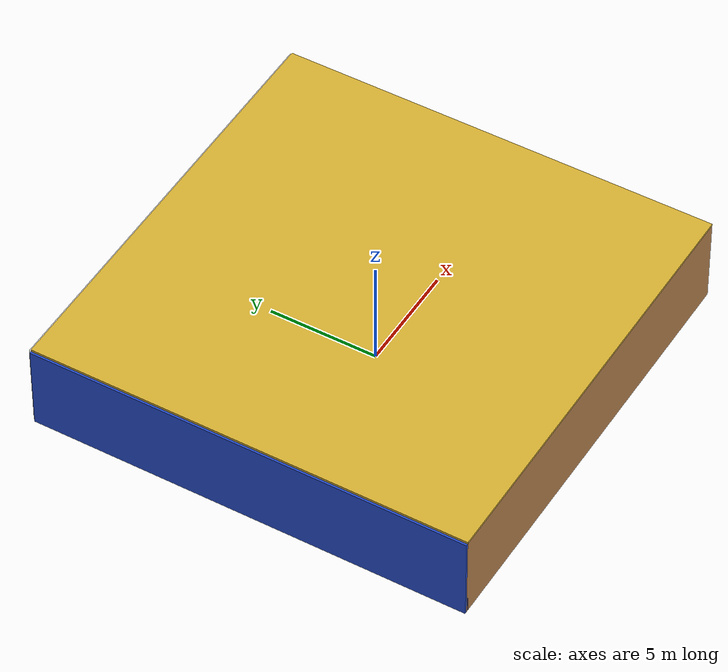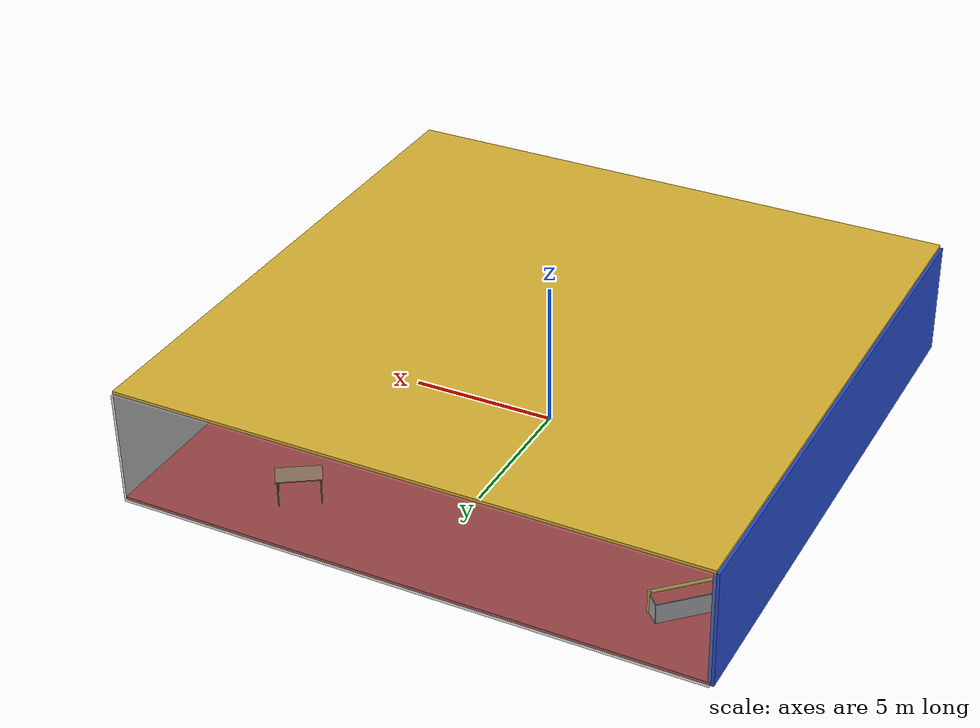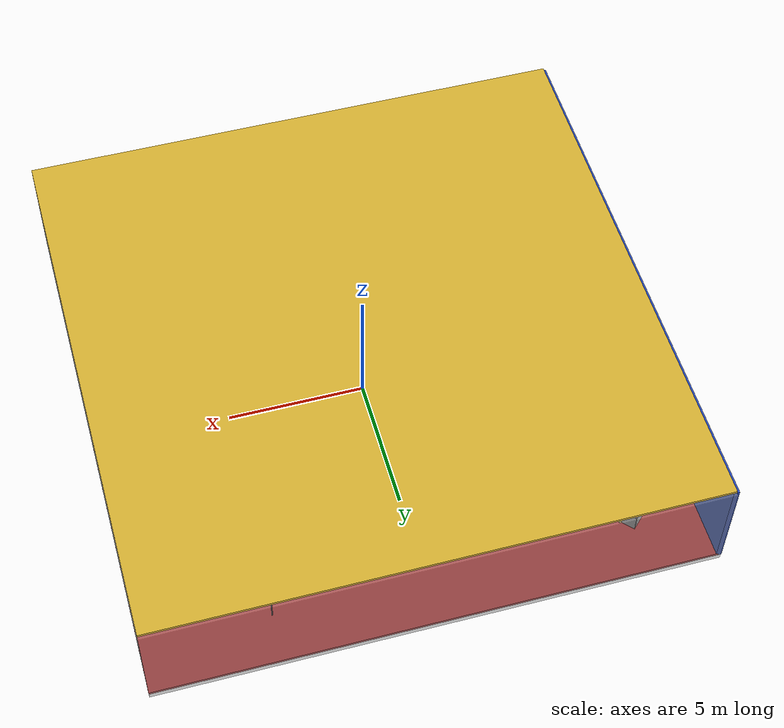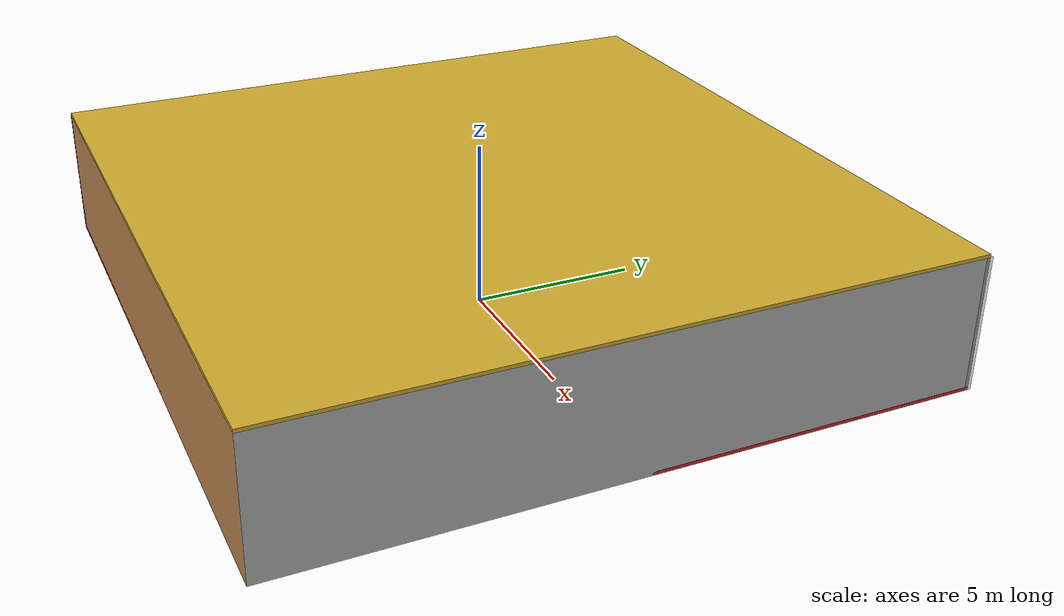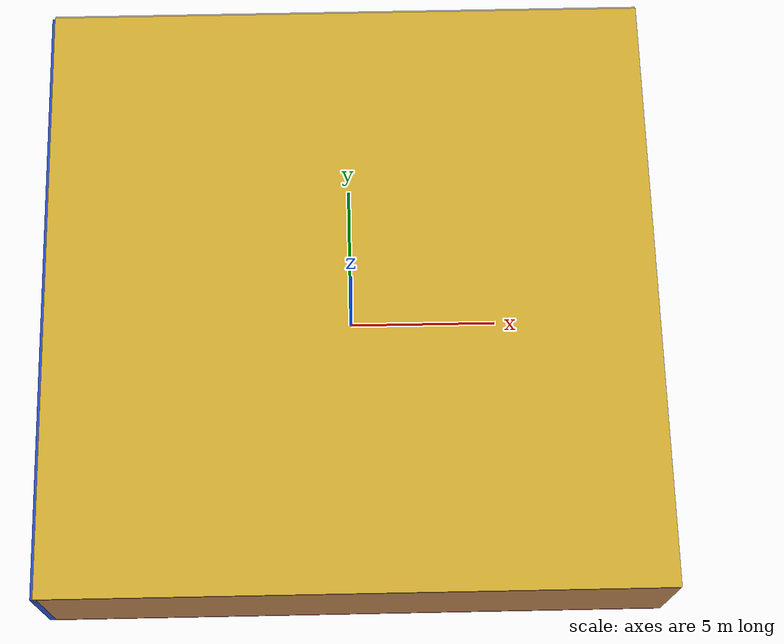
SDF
<sdf version="1.4">
 <world name="default">
  <physics type="ode">
   <max_step_size>0.001</max_step_size>
   <real_time_factor>1</real_time_factor>
   <real_time_update_rate>1000</real_time_update_rate>
   <gravity>0 0 -9.8</gravity>
  </physics>
  <scene><ambient>0.4 0.4 0.4 1</ambient><background>0.7 0.7 0.7 1</background><shadows>1</shadows></scene>
  <model name="Surrounding">
   <static>1</static>
   <link name="Ceiling">
    <collision name="Ceiling_Collision"><geometry><box><size>20 20 0.1</size></box></geometry></collision>
    <visual name="Ceiling_Visual">
     <geometry><box><size>20 20 0.1</size></box></geometry>
     <material>
      <script><uri>file://media/materials/scripts/gazebo.material</uri><name>Gazebo/Gold</name></script>
     </material>
    </visual>
    <pose>0 0 4.05 0 0 0</pose>
   </link>
   <link name="Wall_South">
    <collision name="Wall_South_Collision">
     <geometry><box><size>20 0 4</size></box></geometry>
     <pose>0 0 2 0 -0 0</pose>
    </collision>
    <visual name="Wall_South_Visual">
     <pose>0 0 2 0 -0 0</pose>
     <geometry><box><size>20 0 4</size></box></geometry>
     <material>
      <script><uri>file://media/materials/scripts/gazebo.material</uri><name>Gazebo/WoodFloor</name></script>
     </material>
    </visual>
    <velocity_decay><linear>0</linear><angular>0</angular></velocity_decay>
    <pose>0 -10 0 0 -0 0</pose>
   </link>
   <link name="Wall_East">
    <collision name="Wall_21_Collision">
     <geometry><box><size>20 0 4</size></box></geometry>
     <pose>0 0 2 0 -0 0</pose>
    </collision>
    <visual name="Wall_21_Visual">
     <pose>0 0 2 0 -0 0</pose>
     <geometry><box><size>20 0 4</size></box></geometry>
     <material>
      <script><uri>file://media/materials/scripts/gazebo.material</uri><name>Gazebo/Pioneer2Body</name></script>
     </material>
    </visual>
    <velocity_decay><linear>0</linear><angular>0</angular></velocity_decay>
    <pose>10 0 0 0 -0 1.5708</pose>
   </link>
   <link name="Wall_North">
    <collision name="Wall_22_Collision">
     <geometry><box><size>20 0.2 4</size></box></geometry>
     <pose>0 0 2 0 -0 0</pose>
    </collision>
    <visual name="Wall_22_Visual">
     <pose>0 0 2 0 -0 0</pose>
     <geometry><box><size>20 0.2 4</size></box></geometry>
     <material>
      <script><uri>file://media/materials/scripts/gazebo.material</uri><name>Gazebo/GreyTransparent</name></script>
     </material>
    </visual>
    <velocity_decay><linear>0</linear><angular>0</angular></velocity_decay>
    <pose>0 10 0 0 -0 0</pose>
   </link>
   <link name="Wall_West">
    <collision name="Wall_23_Collision">
     <geometry><box><size>20 0.2 4</size></box></geometry>
     <pose>0 0 2 0 -0 0</pose>
    </collision>
    <visual name="Wall_23_Visual">
     <pose>0 0 2 0 -0 0</pose>
     <geometry><box><size>20 0.2 4</size></box></geometry>
     <material>
      <script><uri>file://media/materials/scripts/gazebo.material</uri><name>Gazebo/Blue</name></script>
     </material>
    </visual>
    <velocity_decay><linear>0</linear><angular>0</angular></velocity_decay>
    <pose>-10 0 0 0 0 -1.5708</pose>
   </link>
   <link name="Ground_link">
    <collision name="collision">
     <pose>0 0 .05 0 -0 0</pose>
     <geometry><box><size>20 20 0.1</size></box></geometry>
    </collision>
    <visual name="visual">
     <pose>0 0 .05 0 -0 0</pose>
     <geometry><box><size>20 20 0.1</size></box></geometry>
     <material>
      <script><uri>file://media/materials/scripts/gazebo.material</uri><name>Gazebo/RedBright</name></script>
     </material>
    </visual>
   </link>
   <static>1</static>
  </model>
  <spherical_coordinates>
   <surface_model>EARTH_WGS84</surface_model>
   <latitude_deg>0</latitude_deg>
   <longitude_deg>0</longitude_deg>
   <elevation>0</elevation>
   <heading_deg>0</heading_deg>
  </spherical_coordinates>
  <light name="lightball_0" type="diffuse">
   <diffuse>0.8 0.8 0.8 1</diffuse>
   <specular>0.2 0.2 0.2 1</specular>
   <attenuation>
    <range>100</range>
    <constant>0.7</constant>
    <linear>0.01</linear>
    <quadratic>0.001</quadratic>
   </attenuation>
   <direction>-0.5 0.1 -0.9</direction>
   <pose>1.23852315249 -2.60402225568 2.37857005552 0 0 0</pose>
  </light>
  <light name="lightball_1" type="diffuse">
   <diffuse>0.8 0.8 0.8 1</diffuse>
   <specular>0.2 0.2 0.2 1</specular>
   <attenuation>
    <range>100</range>
    <constant>0.7</constant>
    <linear>0.01</linear>
    <quadratic>0.001</quadratic>
   </attenuation>
   <direction>-0.5 0.1 -0.9</direction>
   <pose>8.12867128951 -9.56453580445 1.5289057692 0 0 0</pose>
  </light>
  <light name="lightball_2" type="diffuse">
   <diffuse>0.8 0.8 0.8 1</diffuse>
   <specular>0.2 0.2 0.2 1</specular>
   <attenuation>
    <range>100</range>
    <constant>0.7</constant>
    <linear>0.01</linear>
    <quadratic>0.001</quadratic>
   </attenuation>
   <direction>-0.5 0.1 -0.9</direction>
   <pose>7.59371605922 -4.85466132016 3.44872022117 0 0 0</pose>
  </light>
  <light name="lightball_3" type="diffuse">
   <diffuse>0.8 0.8 0.8 1</diffuse>
   <specular>0.2 0.2 0.2 1</specular>
   <attenuation>
    <range>100</range>
    <constant>0.7</constant>
    <linear>0.01</linear>
    <quadratic>0.001</quadratic>
   </attenuation>
   <direction>-0.5 0.1 -0.9</direction>
   <pose>4.21108530213 5.49432833293 2.8770010277 0 0 0</pose>
  </light>
  <light name="lightball_4" type="diffuse">
   <diffuse>0.8 0.8 0.8 1</diffuse>
   <specular>0.2 0.2 0.2 1</specular>
   <attenuation>
    <range>100</range>
    <constant>0.7</constant>
    <linear>0.01</linear>
    <quadratic>0.001</quadratic>
   </attenuation>
   <direction>-0.5 0.1 -0.9</direction>
   <pose>-1.02147433112 6.00853095279 0.80149235152 0 0 0</pose>
  </light>
  <light name="lightball_5" type="diffuse">
   <diffuse>0.8 0.8 0.8 1</diffuse>
   <specular>0.2 0.2 0.2 1</specular>
   <attenuation>
    <range>100</range>
    <constant>0.7</constant>
    <linear>0.01</linear>
    <quadratic>0.001</quadratic>
   </attenuation>
   <direction>-0.5 0.1 -0.9</direction>
   <pose>-5.92844272742 4.99787384621 1.73778778983 0 0 0</pose>
  </light>
  <light name="lightball_6" type="diffuse">
   <diffuse>0.8 0.8 0.8 1</diffuse>
   <specular>0.2 0.2 0.2 1</specular>
   <attenuation>
    <range>100</range>
    <constant>0.7</constant>
    <linear>0.01</linear>
    <quadratic>0.001</quadratic>
   </attenuation>
   <direction>-0.5 0.1 -0.9</direction>
   <pose>-8.41626747368 4.55090147002 2.22830781638 0 0 0</pose>
  </light>
  <light name="lightball_7" type="diffuse">
   <diffuse>0.8 0.8 0.8 1</diffuse>
   <specular>0.2 0.2 0.2 1</specular>
   <attenuation>
    <range>100</range>
    <constant>0.7</constant>
    <linear>0.01</linear>
    <quadratic>0.001</quadratic>
   </attenuation>
   <direction>-0.5 0.1 -0.9</direction>
   <pose>-5.31329706415 8.16020835096 0.553033293745 0 0 0</pose>
  </light>
  <light name="lightball_8" type="diffuse">
   <diffuse>0.8 0.8 0.8 1</diffuse>
   <specular>0.2 0.2 0.2 1</specular>
   <attenuation>
    <range>100</range>
    <constant>0.7</constant>
    <linear>0.01</linear>
    <quadratic>0.001</quadratic>
   </attenuation>
   <direction>-0.5 0.1 -0.9</direction>
   <pose>7.12714175128 -6.1888723409 1.94812830169 0 0 0</pose>
  </light>
  <light name="lightball_9" type="diffuse">
   <diffuse>0.8 0.8 0.8 1</diffuse>
   <specular>0.2 0.2 0.2 1</specular>
   <attenuation>
    <range>100</range>
    <constant>0.7</constant>
    <linear>0.01</linear>
    <quadratic>0.001</quadratic>
   </attenuation>
   <direction>-0.5 0.1 -0.9</direction>
   <pose>-1.08555175652 -8.0527535077 2.02534664208 0 0 0</pose>
  </light>
  <light name="lightball_10" type="diffuse">
   <diffuse>0.8 0.8 0.8 1</diffuse>
   <specular>0.2 0.2 0.2 1</specular>
   <attenuation>
    <range>100</range>
    <constant>0.7</constant>
    <linear>0.01</linear>
    <quadratic>0.001</quadratic>
   </attenuation>
   <direction>-0.5 0.1 -0.9</direction>
   <pose>5.22520916907 -8.25035052276 0.91091031328 0 0 0</pose>
  </light>
  <light name="lightball_11" type="diffuse">
   <diffuse>0.8 0.8 0.8 1</diffuse>
   <specular>0.2 0.2 0.2 1</specular>
   <attenuation>
    <range>100</range>
    <constant>0.7</constant>
    <linear>0.01</linear>
    <quadratic>0.001</quadratic>
   </attenuation>
   <direction>-0.5 0.1 -0.9</direction>
   <pose>-0.347826898363 -4.62753199399 0.558792240855 0 0 0</pose>
  </light>
  <include>
   <uri>model://robocup_3Dsim_goal</uri>
   <pose>-7.292707936 -7.59713405033 0 0 0 1.51267956812</pose>
  </include>
  <include><uri>model://cabinet</uri><pose>-7.61854980326 1.37475923884 0 0 0 2.5888479127</pose></include>
  <include><uri>model://cabinet</uri><pose>-6.85901168155 4.62701522365 0 0 0 0.264354548711</pose></include>
  <include>
   <uri>model://robocup_3Dsim_goal</uri>
   <pose>-7.90304211476 7.17977460728 0 0 0 2.33610898855</pose>
  </include>
  <include><uri>model://cabinet</uri><pose>-0.74533483873 1.5233379108 0 0 0 2.05477887303</pose></include>
  <include>
   <uri>model://textured_shapes</uri>
   <pose>4.55603862691 -4.58627222705 0 0 0 1.83269863183</pose>
  </include>
  <include><uri>model://table</uri><pose>5.04376696759 7.58807124964 0 0 0 0.574599023861</pose></include>
  <include>
   <uri>model://construction_cone</uri>
   <pose>7.28056960871 -0.780315756323 0 0 0 0.967316909212</pose>
  </include>
 </world>
</sdf>

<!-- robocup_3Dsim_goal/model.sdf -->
<sdf version="1.5">
  <model name="robocup_3d_goal">
    <static>true</static>
    <link name="left_post">
      <pose>0 1.05 0.45 0 0 0</pose>
      <collision name="collision">
        <geometry>
          <cylinder>
            <radius>0.05</radius>
            <length>0.9</length>
          </cylinder>
        </geometry>
      </collision>
      <visual name="visual">
        <geometry>
          <cylinder>
            <radius>0.05</radius>
            <length>0.9</length>
          </cylinder>
        </geometry>
        <material>
          <script>
            <uri>file://media/materials/scripts/gazebo.material</uri>
            <name>Gazebo/ZincYellow</name>
          </script>
        </material>
      </visual>
    </link>
    <link name="left_support_horiz_lower">
      <pose>0.30 1.05 0.01 0 0 0</pose>
      <collision name="collision">
        <geometry>
          <box>
            <size>0.50 0.02 0.02</size>
          </box>
        </geometry>
      </collision>
      <visual name="visual">
        <geometry>
          <box>
            <size>0.50 0.02 0.02</size>
          </box>
        </geometry>
        <material>
          <script>
            <uri>file://media/materials/scripts/gazebo.material</uri>
            <name>Gazebo/White</name>
          </script>
        </material>
      </visual>
    </link>
    <link name="left_support_horiz_upper">
      <pose>0.30 1.05 0.79 0 0 0</pose>
      <collision name="collision">
        <geometry>
          <box>
            <size>0.50 0.02 0.02</size>
          </box>
        </geometry>
      </collision>
      <visual name="visual">
        <geometry>
          <box>
            <size>0.50 0.02 0.02</size>
          </box>
        </geometry>
        <material>
          <script>
            <uri>file://media/materials/scripts/gazebo.material</uri>
            <name>Gazebo/White</name>
          </script>
        </material>
      </visual>
    </link>
    <link name="left_support_vertical">
      <pose>0.56 1.05 0.4 0 1.5708 0</pose>
      <collision name="collision">
        <geometry>
          <box>
            <size>0.80 0.02 0.02</size>
          </box>
        </geometry>
      </collision>
      <visual name="visual">
        <geometry>
          <box>
            <size>0.80 0.02 0.02</size>
          </box>
        </geometry>
        <material>
          <script>
            <uri>file://media/materials/scripts/gazebo.material</uri>
            <name>Gazebo/White</name>
          </script>
        </material>
      </visual>
    </link>
    <link name="right_support_horiz_lower">
      <pose>0.30 -1.05 0.01 0 0 0</pose>
      <collision name="collision">
        <geometry>
          <box>
            <size>0.50 0.02 0.02</size>
          </box>
        </geometry>
      </collision>
      <visual name="visual">
        <geometry>
          <box>
            <size>0.50 0.02 0.02</size>
          </box>
        </geometry>
        <material>
          <script>
            <uri>file://media/materials/scripts/gazebo.material</uri>
            <name>Gazebo/White</name>
          </script>
        </material>
      </visual>
    </link>
    <link name="right_support_horiz_upper">
      <pose>0.30 -1.05 0.79 0 0 0</pose>
      <collision name="collision">
        <geometry>
          <box>
            <size>0.50 0.02 0.02</size>
          </box>
        </geometry>
      </collision>
      <visual name="visual">
        <geometry>
          <box>
            <size>0.50 0.02 0.02</size>
          </box>
        </geometry>
        <material>
          <script>
            <uri>file://media/materials/scripts/gazebo.material</uri>
            <name>Gazebo/White</name>
          </script>
        </material>
      </visual>
    </link>
    <link name="right_support_vertical">
      <pose>0.56 -1.05 0.4 0 1.5708 0</pose>
      <collision name="collision">
        <geometry>
          <box>
            <size>0.80 0.02 0.02</size>
          </box>
        </geometry>
      </collision>
      <visual name="visual">
        <geometry>
          <box>
            <size>0.80 0.02 0.02</size>
          </box>
        </geometry>
        <material>
          <script>
            <uri>file://media/materials/scripts/gazebo.material</uri>
            <name>Gazebo/White</name>
          </script>
        </material>
      </visual>
    </link>
    <link name="center_support_horiz_lower">
      <pose>0.56 0 0.01 0 1.5708 0</pose>
      <collision name="collision">
        <geometry>
          <box>
            <size>0.02 2.08 0.02</size>
          </box>
        </geometry>
      </collision>
      <visual name="visual">
        <geometry>
          <box>
            <size>0.02 2.08 0.02</size>
          </box>
        </geometry>
        <material>
          <script>
            <uri>file://media/materials/scripts/gazebo.material</uri>
            <name>Gazebo/White</name>
          </script>
        </material>
      </visual>
    </link>
    <link name="center_support_horiz_upper">
      <pose>0.56 0 0.79 0 1.5708 0</pose>
      <collision name="collision">
        <geometry>
          <box>
            <size>0.02 2.08 0.02</size>
          </box>
        </geometry>
      </collision>
      <visual name="visual">
        <geometry>
          <box>
            <size>0.02 2.08 0.02</size>
          </box>
        </geometry>
        <material>
          <script>
            <uri>file://media/materials/scripts/gazebo.material</uri>
            <name>Gazebo/White</name>
          </script>
        </material>
      </visual>
    </link>
    <link name="right_post">
      <pose>0 -1.05 0.45 0 0 0</pose>
      <collision name="collision">
        <geometry>
          <cylinder>
            <radius>0.05</radius>
            <length>0.9</length>
          </cylinder>
        </geometry>
      </collision>
      <visual name="visual">
        <geometry>
          <cylinder>
            <radius>0.05</radius>
            <length>0.9</length>
          </cylinder>
        </geometry>
        <material>
          <script>
            <uri>file://media/materials/scripts/gazebo.material</uri>
            <name>Gazebo/ZincYellow</name>
          </script>
        </material>
      </visual>
    </link>
    <link name="crossbar">
      <pose>0 0 0.85 1.57 1.57 0</pose>
      <collision name="collision">
        <geometry>
          <cylinder>
            <radius>0.05</radius>
            <length>2.0</length>
          </cylinder>
        </geometry>
      </collision>
      <visual name="visual">
        <geometry>
          <cylinder>
            <radius>0.05</radius>
            <length>2.0</length>
          </cylinder>
        </geometry>
        <material>
          <script>
            <uri>file://media/materials/scripts/gazebo.material</uri>
            <name>Gazebo/ZincYellow</name>
          </script>
        </material>
      </visual>
    </link>
    <link name="center_net">
      <pose>0.56 0 0.40 0 0 0</pose>
      <collision name="collision">
        <geometry>
          <box>
            <size>0.01 2.1 0.80</size>
          </box>
        </geometry>
      </collision>
      <visual name="visual">
        <geometry>
          <box>
            <size>0.01 2.1 0.80</size>
          </box>
        </geometry>
        <material>
          <script>
            <uri>model://../model_source/models/robocup09_spl_field/materials/scripts/</uri>
            <uri>model://../model_source/models/robocup09_spl_field/materials/textures/</uri>
            <name>RoboCup/Net</name>
          </script>
        </material>
      </visual>
    </link>
    <link name="left_net">
      <pose>0.30 1.05 0.40 0 0 0</pose>
      <collision name="collision">
        <geometry>
          <box>
            <size>0.50 0.01 0.76</size>
          </box>
        </geometry>
      </collision>
      <visual name="visual">
        <geometry>
          <box>
            <size>0.50 0.01 0.76</size>
          </box>
        </geometry>
        <material>
          <script>
            <uri>model://../model_source/models/robocup09_spl_field/materials/scripts/</uri>
            <uri>model://../model_source/models/robocup09_spl_field/materials/textures/</uri>
            <name>RoboCup/Net</name>
          </script>
        </material>
      </visual>
    </link>
    <link name="right_net">
      <pose>0.30 -1.05 0.40 0 0 0</pose>
      <collision name="collision">
        <geometry>
          <box>
            <size>0.50 0.01 0.76</size>
          </box>
        </geometry>
      </collision>
      <visual name="visual">
        <geometry>
          <box>
            <size>0.50 0.01 0.76</size>
          </box>
        </geometry>
        <material>
          <script>
            <uri>model://../model_source/models/robocup09_spl_field/materials/scripts/</uri>
            <uri>model://../model_source/models/robocup09_spl_field/materials/textures/</uri>
            <name>RoboCup/Net</name>
          </script>
        </material>
      </visual>
    </link>
  </model>
</sdf>

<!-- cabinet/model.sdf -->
<sdf version="1.5">
  <model name="cabinet">
    <static>true</static>
    <link name="cabinet_bottom_plate">
      <inertial>
        <pose>0 0 -1 0 0 0</pose>
        <inertia>
          <ixx>2.050000</ixx>
          <ixy>0</ixy>
          <ixz>0</ixz>
          <iyy>2.050000</iyy>
          <iyz>0</iyz>
          <izz>2.050000</izz>
        </inertia>
        <mass>25.000000</mass>
      </inertial>
      <collision name="cabinet_bottom_plate_geom">
        <pose>0 0 0.010000 0 0 0</pose>
        <geometry>
          <box>
            <size>0.450000 0.450000 0.020000</size>
          </box>
        </geometry>
      </collision>
      <visual name="cabinet_bottom_plate_geom_visual">
        <pose>0 0 0.010000 0 0 0</pose>
        <geometry>
          <box>
            <size>0.450000 0.450000 0.020000</size>
          </box>
        </geometry>
        <material>
          <script>
            <uri>model://media/materials/scripts/gazebo.material</uri>
            <name>Gazebo/Wood</name>
          </script>
        </material>
      </visual>
      <collision name="cabinet_bottom_plate_geom_cabinet_back_plate">
        <pose>0.235000 0 0.510000 0 0 0</pose>
        <geometry>
          <box>
            <size>0.020000 0.450000 1.020000</size>
          </box>
        </geometry>
      </collision>
      <visual name="cabinet_bottom_plate_geom_cabinet_back_plate_visual">
        <pose>0.235000 0 0.510000 0 0 0</pose>
        <geometry>
          <box>
            <size>0.020000 0.450000 1.020000</size>
          </box>
        </geometry>
        <material>
          <script>
            <uri>model://media/materials/scripts/gazebo.material</uri>
            <name>Gazebo/Wood</name>
          </script>
        </material>
      </visual>
      <collision name="cabinet_bottom_plate_geom_cabinet_left_plate">
        <pose>0 0.235000 0.510000 0 0 0</pose>
        <geometry>
          <box>
            <size>0.450000 0.020000 1.020000</size>
          </box>
        </geometry>
      </collision>
      <visual name="cabinet_bottom_plate_geom_cabinet_left_plate_visual">
        <pose>0 0.235000 0.510000 0 0 0</pose>
        <geometry>
          <box>
            <size>0.450000 0.020000 1.020000</size>
          </box>
        </geometry>
        <material>
          <script>
            <uri>model://media/materials/scripts/gazebo.material</uri>
            <name>Gazebo/Wood</name>
          </script>
        </material>
      </visual>
      <collision name="cabinet_bottom_plate_geom_cabinet_middle_plate">
        <pose>0 0 0.510000 0 0 0</pose>
        <geometry>
          <box>
            <size>0.450000 0.450000 0.020000</size>
          </box>
        </geometry>
      </collision>
      <visual name="cabinet_bottom_plate_geom_cabinet_middle_plate_visual">
        <pose>0 0 0.510000 0 0 0</pose>
        <geometry>
          <box>
            <size>0.450000 0.450000 0.020000</size>
          </box>
        </geometry>
        <material>
          <script>
            <uri>model://media/materials/scripts/gazebo.material</uri>
            <name>Gazebo/Wood</name>
          </script>
        </material>
      </visual>
      <collision name="cabinet_bottom_plate_geom_cabinet_right_plate">
        <pose>0 -0.235000 0.510000 0 0 0</pose>
        <geometry>
          <box>
            <size>0.450000 0.020000 1.020000</size>
          </box>
        </geometry>
      </collision>
      <visual name="cabinet_bottom_plate_geom_cabinet_right_plate_visual">
        <pose>0 -0.235000 0.510000 0 0 0</pose>
        <geometry>
          <box>
            <size>0.450000 0.020000 1.020000</size>
          </box>
        </geometry>
        <material>
          <script>
            <uri>model://media/materials/scripts/gazebo.material</uri>
            <name>Gazebo/Wood</name>
          </script>
        </material>
      </visual>
      <collision name="cabinet_bottom_plate_geom_cabinet_top_plate">
        <pose>0 0 1.010000 0 0 0</pose>
        <geometry>
          <box>
            <size>0.450000 0.450000 0.020000</size>
          </box>
        </geometry>
      </collision>
      <visual name="cabinet_bottom_plate_geom_cabinet_top_plate_visual">
        <pose>0 0 1.010000 0 0 0</pose>
        <geometry>
          <box>
            <size>0.450000 0.450000 0.020000</size>
          </box>
        </geometry>
        <material>
          <script>
            <uri>model://media/materials/scripts/gazebo.material</uri>
            <name>Gazebo/Wood</name>
          </script>
        </material>
      </visual>
    </link>
  </model>
</sdf>

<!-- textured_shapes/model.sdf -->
<sdf version="1.6">
  <model name="textured_shapes">
    <pose>0 0 0.5 0 0 0</pose>
    <link name="box">
      <pose>0 -1.5 0 0 0 0</pose>
      <collision name="collision">
        <geometry>
          <box>
            <size>1 1 1</size>
          </box>
        </geometry>
      </collision>
      <visual name="visual">
        <geometry>
          <box>
            <size>1 1 1</size>
          </box>
        </geometry>
        <material>
          <script>
            <uri>model://../model_source/models/textured_shapes/materials/scripts</uri>
            <uri>model://../model_source/models/textured_shapes/materials/textures</uri>
            <name>TexturedShape/Squares</name>
          </script>
        </material>
      </visual>
    </link>
    <link name="sphere">
      <collision name="collision">
        <geometry>
          <sphere>
            <radius>0.5</radius>
          </sphere>
        </geometry>
      </collision>
      <visual name="visual">
        <geometry>
          <sphere>
            <radius>0.5</radius>
          </sphere>
        </geometry>
        <material>
          <script>
            <uri>model://../model_source/models/textured_shapes/materials/scripts</uri>
            <uri>model://../model_source/models/textured_shapes/materials/textures</uri>
            <name>TexturedShape/Squares</name>
          </script>
        </material>
      </visual>
    </link>
    <link name="cylinder">
      <pose>0 1.5 0 0 0 0</pose>
      <collision name="collision">
        <geometry>
          <cylinder>
            <radius>0.5</radius>
            <length>1</length>
          </cylinder>
        </geometry>
      </collision>
      <visual name="visual">
        <geometry>
          <cylinder>
            <radius>0.5</radius>
            <length>1</length>
          </cylinder>
        </geometry>
        <material>
          <script>
            <uri>model://../model_source/models/textured_shapes/materials/scripts</uri>
            <uri>model://../model_source/models/textured_shapes/materials/textures</uri>
            <name>TexturedShape/Squares</name>
          </script>
        </material>
      </visual>
    </link>
  </model>
</sdf>

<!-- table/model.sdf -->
<sdf version="1.5">
  <model name="table">
    <static>true</static>
    <link name="link">
      <collision name="surface">
        <pose>0 0 1.0 0 0 0</pose>
        <geometry>
          <box>
            <size>1.5 0.8 0.03</size>
          </box>
        </geometry>
        <surface>
          <friction>
            <ode>
              <mu>0.6</mu>
              <mu2>0.6</mu2>
            </ode>
          </friction>
        </surface>
      </collision>
      <visual name="visual1">
        <pose>0 0 1.0 0 0 0</pose>
        <geometry>
          <box>
            <size>1.5 0.8 0.03</size>
          </box>
        </geometry>
        <material>
          <script>
            <uri>model://media/materials/scripts/gazebo.material</uri>
            <name>Gazebo/Wood</name>
          </script>
        </material>
      </visual>
      <collision name="front_left_leg">
        <pose>0.68 0.38 0.5 0 0 0</pose>
        <geometry>
          <cylinder>
            <radius>0.02</radius>
            <length>1.0</length>
          </cylinder>
        </geometry>
      </collision>
      <visual name="front_left_leg">
        <pose>0.68 0.38 0.5 0 0 0</pose>
        <geometry>
          <cylinder>
            <radius>0.02</radius>
            <length>1.0</length>
          </cylinder>
        </geometry>
        <material>
          <script>
            <uri>model://media/materials/scripts/gazebo.material</uri>
            <name>Gazebo/Grey</name>
          </script>
        </material>
      </visual>
      <collision name="front_right_leg">
        <pose>0.68 -0.38 0.5 0 0 0</pose>
        <geometry>
          <cylinder>
            <radius>0.02</radius>
            <length>1.0</length>
          </cylinder>
        </geometry>
      </collision>
      <visual name="front_right_leg">
        <pose>0.68 -0.38 0.5 0 0 0</pose>
        <geometry>
          <cylinder>
            <radius>0.02</radius>
            <length>1.0</length>
          </cylinder>
        </geometry>
        <material>
          <script>
            <uri>model://media/materials/scripts/gazebo.material</uri>
            <name>Gazebo/Grey</name>
          </script>
        </material>
      </visual>
      <collision name="back_right_leg">
        <pose>-0.68 -0.38 0.5 0 0 0</pose>
        <geometry>
          <cylinder>
            <radius>0.02</radius>
            <length>1.0</length>
          </cylinder>
        </geometry>
      </collision>
      <visual name="back_right_leg">
        <pose>-0.68 -0.38 0.5 0 0 0</pose>
        <geometry>
          <cylinder>
            <radius>0.02</radius>
            <length>1.0</length>
          </cylinder>
        </geometry>
        <material>
          <script>
            <uri>model://media/materials/scripts/gazebo.material</uri>
            <name>Gazebo/Grey</name>
          </script>
        </material>
      </visual>
      <collision name="back_left_leg">
        <pose>-0.68 0.38 0.5 0 0 0</pose>
        <geometry>
          <cylinder>
            <radius>0.02</radius>
            <length>1.0</length>
          </cylinder>
        </geometry>
      </collision>
      <visual name="back_left_leg">
        <pose>-0.68 0.38 0.5 0 0 0</pose>
        <geometry>
          <cylinder>
            <radius>0.02</radius>
            <length>1.0</length>
          </cylinder>
        </geometry>
        <material>
          <script>
            <uri>model://media/materials/scripts/gazebo.material</uri>
            <name>Gazebo/Grey</name>
          </script>
        </material>
      </visual>
    </link>
  </model>
</sdf>

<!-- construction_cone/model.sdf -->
<sdf version="1.5">
  <model name="Construction Cone">
    <link name="link">
      <collision name="collision">
        <geometry>
          <mesh>
            <scale>10 10 10</scale>
            <uri>file://isr-testbed/construction_cone/meshes/construction_cone.dae</uri>
          </mesh>
        </geometry>
      </collision>
      <visual name="visual">
        <geometry>
          <mesh>
            <scale>10 10 10</scale>
            <uri>file://isr-testbed/construction_cone/meshes/construction_cone.dae</uri>
          </mesh>
        </geometry>
      </visual>
    </link>
  </model>
</sdf>
